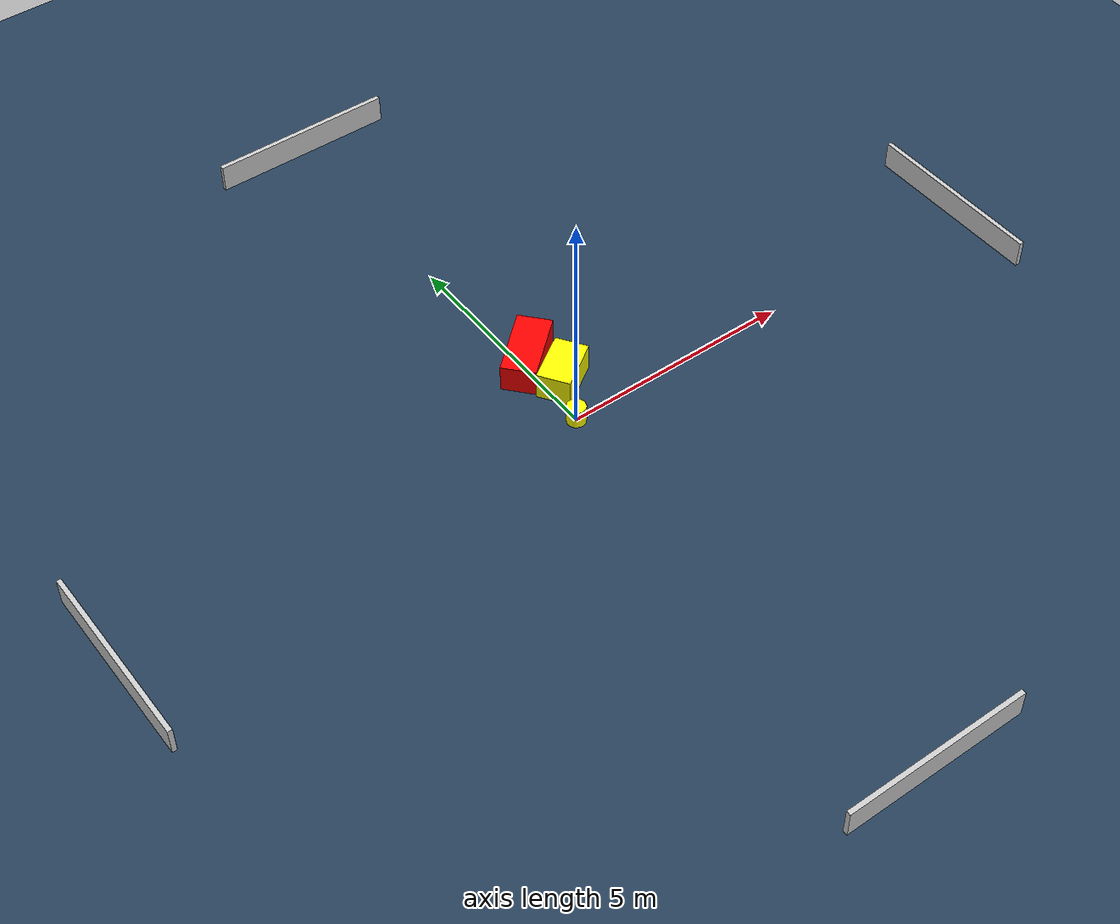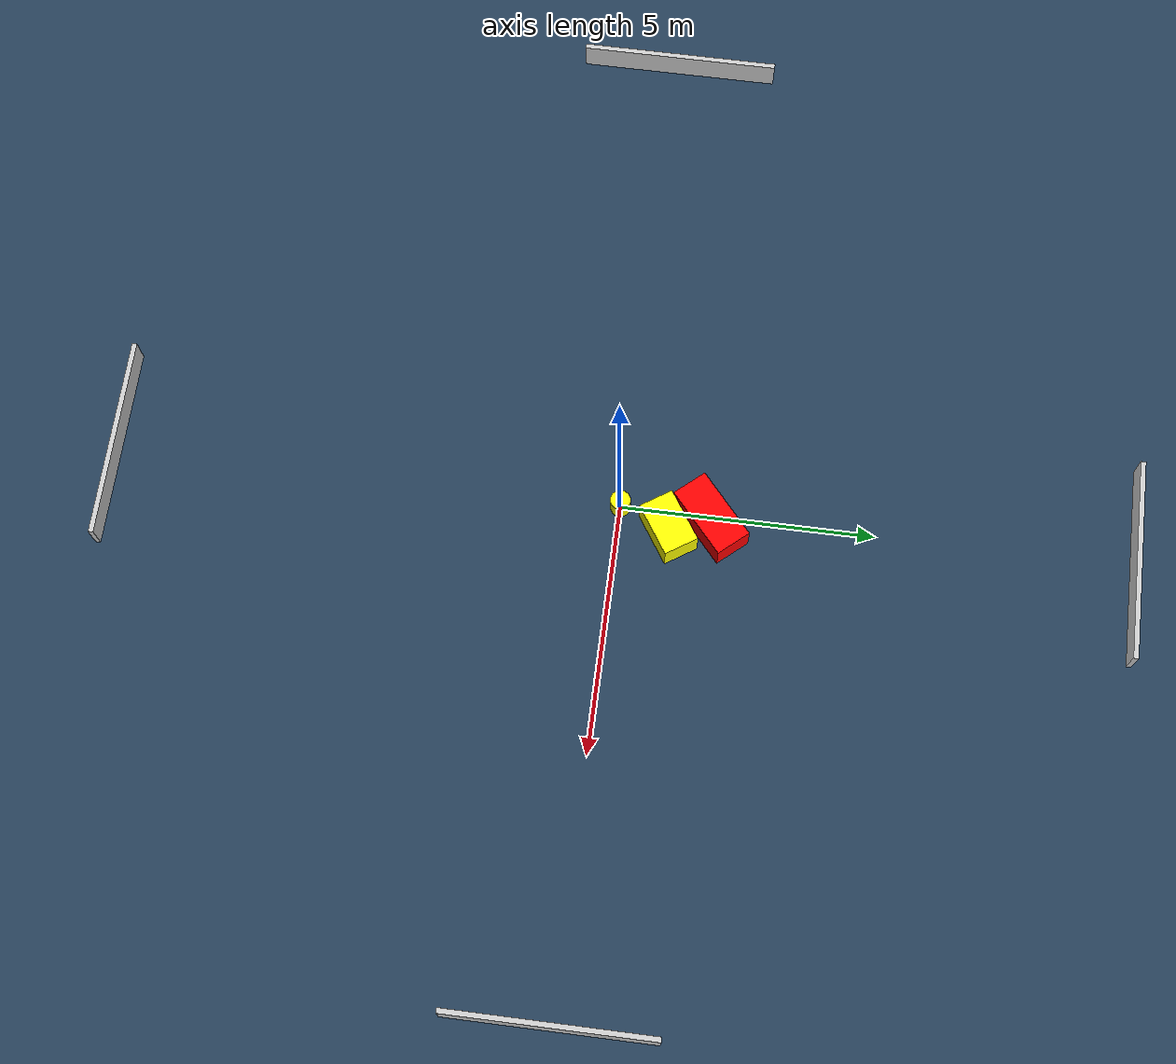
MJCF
<?xml version="1.0" ?>
<mujoco model="generated_environment">
  <option timestep="0.01" integrator="RK4" cone="elliptic"/>
  <default>
    <geom density="1"/>
  </default>
  <asset>
    <texture builtin="gradient" height="3072" name="skybox" rgb1="0.3 0.5 0.7" rgb2="0 0 0" type="skybox" width="512"/>
    <texture builtin="checker" height="300" name="groundplane" rgb1="0.2 0.3 0.4" rgb2="0.1 0.2 0.3" type="2d" width="300"/>
    <material name="groundplane" reflectance="0.2" texrepeat="5 5" texture="groundplane"/>
  </asset>
  <worldbody>
    <light dir="0 0 -1" directional="true" pos="0 0 1.5"/>
    <geom condim="3" friction="0.5 0.005 0.001" material="groundplane" name="floor" pos="0 0 0" size="0 0 0.05" type="plane"/>
    <body name="walls">
      <geom name="wall_1" condim="4" pos="-10.0 0.0 0.3" rgba="0.800000011920929 0.800000011920929 0.800000011920929 1.0" size="0.05 2.0 0.3" type="box"/>
      <geom name="wall_2" condim="4" pos="10.0 0.0 0.3" rgba="0.800000011920929 0.800000011920929 0.800000011920929 1.0" size="0.05 2.0 0.3" type="box"/>
      <geom name="wall_3" condim="4" pos="0.0 -10.0 0.3" rgba="0.800000011920929 0.800000011920929 0.800000011920929 1.0" size="2.0 0.05 0.3" type="box"/>
      <geom name="wall_4" condim="4" pos="0.0 10.0 0.3" rgba="0.800000011920929 0.800000011920929 0.800000011920929 1.0" size="2.0 0.05 0.3" type="box"/>
    </body>
    <body name="robot">
      <joint name="joint_x" type="slide" pos="0 0 0" axis="1 0 0"/>
      <joint name="joint_y" type="slide" pos="0 0 0" axis="0 1 0"/>
      <geom name="robot" type="cylinder" pos="0.0 0.0 0.2" size="0.2 0.2 0.0" mass="5.0" friction="1.0 0.005 0.0001" condim="4" rgba="1.0 1.0 0.0 1.0"/>
    </body>
    <body name="obstacle_1_movable">
      <geom name="obstacle_1_movable" condim="4" pos="0.404920147387936 0.9832614158566222 0.3" euler="0 0 303.5305160080623" friction="0.0 0.005 0.001" rgba="1.0 1.0 0.0 1.0" size="0.3533800893080349 0.5495942215852766 0.3" type="box" mass="0.1"/>
      <joint type="free"/>
    </body>
    <body name="obstacle_2_static">
      <geom name="obstacle_2_static" condim="4" pos="0.11405051879581223 1.7805759169366457 0.3" euler="0 0 311.16252763046657" friction="0.0 0.005 0.001" rgba="1.0 0.0 0.0 1.0" size="0.3663191585354705 0.749615278926264 0.3" type="box"/>
    </body>
  </worldbody>
  <actuator>
    <motor name="actuator_x" joint="joint_x" gear="1" ctrlrange="-1 1"/>
    <motor name="actuator_y" joint="joint_y" gear="1" ctrlrange="-1 1"/>
  </actuator>
</mujoco>
